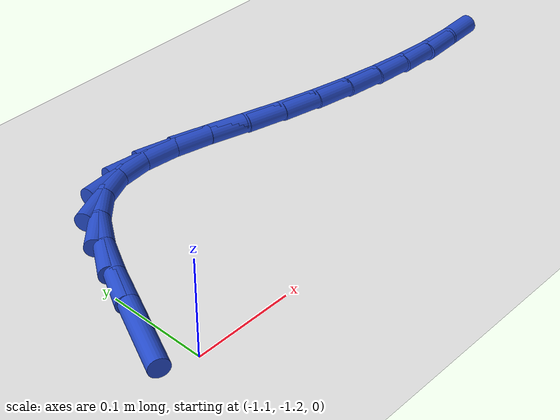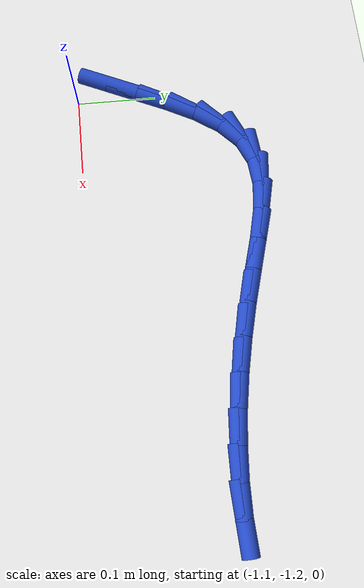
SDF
<sdf version="1.6">
 <world name="default">
  <model name="ground_plane">
   <static>1</static>
   <link name="link">
    <collision name="collision">
     <geometry><plane><normal>0 0 1</normal><size>100 100</size></plane></geometry>
     <surface><friction><ode><mu>100</mu><mu2>50</mu2></ode></friction></surface>
    </collision>
    <visual name="visual">
     <cast_shadows>0</cast_shadows>
     <geometry><plane><normal>0 0 1</normal><size>100 100</size></plane></geometry>
     <material>
      <script><uri>file://media/materials/scripts/gazebo.material</uri><name>Gazebo/WhiteGlow</name></script>
     </material>
    </visual>
   </link>
  </model>
  <model name="line">
   <link name="link_167">
    <pose>-1.1197684071147735 -1.1575147426174333 0.01 0 1.57 1.1388769129799887</pose>
    <collision name="collision">
     <geometry><cylinder><radius>0.01</radius><length>0.08</length></cylinder></geometry>
    </collision>
    <visual name="visual">
     <material>
      <script><name>Gazebo/Blue</name><uri>file://media/materials/scripts/gazebo.material</uri></script>
     </material>
     <geometry><cylinder><radius>0.01</radius><length>0.08</length></cylinder></geometry>
    </visual>
   </link>
   <link name="link_168">
    <pose>-1.103433842752954 -1.122077712791463 0.01 0 1.57 1.1398282263230974</pose>
    <collision name="collision">
     <geometry><cylinder><radius>0.01</radius><length>0.08</length></cylinder></geometry>
    </collision>
    <visual name="visual">
     <material>
      <script><name>Gazebo/Blue</name><uri>file://media/materials/scripts/gazebo.material</uri></script>
     </material>
     <geometry><cylinder><radius>0.01</radius><length>0.08</length></cylinder></geometry>
    </visual>
   </link>
   <link name="link_169">
    <pose>-1.0863407128746343 -1.0849020274361565 0.01 0 1.57 1.0875650120818283</pose>
    <collision name="collision">
     <geometry><cylinder><radius>0.01</radius><length>0.08</length></cylinder></geometry>
    </collision>
    <visual name="visual">
     <material>
      <script><name>Gazebo/Blue</name><uri>file://media/materials/scripts/gazebo.material</uri></script>
     </material>
     <geometry><cylinder><radius>0.01</radius><length>0.08</length></cylinder></geometry>
    </visual>
   </link>
   <link name="link_170">
    <pose>-1.0676012321452988 -1.0491890645363053 0.01 0 1.57 0.9700957743062841</pose>
    <collision name="collision">
     <geometry><cylinder><radius>0.01</radius><length>0.08</length></cylinder></geometry>
    </collision>
    <visual name="visual">
     <material>
      <script><name>Gazebo/Blue</name><uri>file://media/materials/scripts/gazebo.material</uri></script>
     </material>
     <geometry><cylinder><radius>0.01</radius><length>0.08</length></cylinder></geometry>
    </visual>
   </link>
   <link name="link_171">
    <pose>-1.0463276152304313 -1.0181402020766963 0.01 0 1.57 0.7538257753283981</pose>
    <collision name="collision">
     <geometry><cylinder><radius>0.01</radius><length>0.08</length></cylinder></geometry>
    </collision>
    <visual name="visual">
     <material>
      <script><name>Gazebo/Blue</name><uri>file://media/materials/scripts/gazebo.material</uri></script>
     </material>
     <geometry><cylinder><radius>0.01</radius><length>0.08</length></cylinder></geometry>
    </visual>
   </link>
   <link name="link_172">
    <pose>-1.0216320767955158 -0.9949568180421184 0.01 0 1.57 0.4139565607058293</pose>
    <collision name="collision">
     <geometry><cylinder><radius>0.01</radius><length>0.08</length></cylinder></geometry>
    </collision>
    <visual name="visual">
     <material>
      <script><name>Gazebo/Blue</name><uri>file://media/materials/scripts/gazebo.material</uri></script>
     </material>
     <geometry><cylinder><radius>0.01</radius><length>0.08</length></cylinder></geometry>
    </visual>
   </link>
   <link name="link_173">
    <pose>-0.9927930942430159 -0.9822866041548866 0.01 0 1.57 0.09477115636248466</pose>
    <collision name="collision">
     <geometry><cylinder><radius>0.01</radius><length>0.08</length></cylinder></geometry>
    </collision>
    <visual name="visual">
     <material>
      <script><name>Gazebo/Blue</name><uri>file://media/materials/scripts/gazebo.material</uri></script>
     </material>
     <geometry><cylinder><radius>0.01</radius><length>0.08</length></cylinder></geometry>
    </visual>
   </link>
   <link name="link_174">
    <pose>-0.9601677271383521 -0.9791853701712974 0.01 0 1.57 -0.11432200070218644</pose>
    <collision name="collision">
     <geometry><cylinder><radius>0.01</radius><length>0.08</length></cylinder></geometry>
    </collision>
    <visual name="visual">
     <material>
      <script><name>Gazebo/Blue</name><uri>file://media/materials/scripts/gazebo.material</uri></script>
     </material>
     <geometry><cylinder><radius>0.01</radius><length>0.08</length></cylinder></geometry>
    </visual>
   </link>
   <link name="link_175">
    <pose>-0.92454336241075 -0.9832758545892611 0.01 0 1.57 -0.23106291893609499</pose>
    <collision name="collision">
     <geometry><cylinder><radius>0.01</radius><length>0.08</length></cylinder></geometry>
    </collision>
    <visual name="visual">
     <material>
      <script><name>Gazebo/Blue</name><uri>file://media/materials/scripts/gazebo.material</uri></script>
     </material>
     <geometry><cylinder><radius>0.01</radius><length>0.08</length></cylinder></geometry>
    </visual>
   </link>
   <link name="link_176">
    <pose>-0.8867085071674751 -0.992177065502612 0.01 0 1.57 -0.2809989796131931</pose>
    <collision name="collision">
     <geometry><cylinder><radius>0.01</radius><length>0.08</length></cylinder></geometry>
    </collision>
    <visual name="visual">
     <material>
      <script><name>Gazebo/Blue</name><uri>file://media/materials/scripts/gazebo.material</uri></script>
     </material>
     <geometry><cylinder><radius>0.01</radius><length>0.08</length></cylinder></geometry>
    </visual>
   </link>
   <link name="link_177">
    <pose>-0.8474516685157927 -1.003508011005184 0.01 0 1.57 -0.2785905222663019</pose>
    <collision name="collision">
     <geometry><cylinder><radius>0.01</radius><length>0.08</length></cylinder></geometry>
    </collision>
    <visual name="visual">
     <material>
      <script><name>Gazebo/Blue</name><uri>file://media/materials/scripts/gazebo.material</uri></script>
     </material>
     <geometry><cylinder><radius>0.01</radius><length>0.08</length></cylinder></geometry>
    </visual>
   </link>
   <link name="link_178">
    <pose>-0.8075529746475081 -1.0149201912846846 0.01 0 1.57 -0.24774089463385035</pose>
    <collision name="collision">
     <geometry><cylinder><radius>0.01</radius><length>0.08</length></cylinder></geometry>
    </collision>
    <visual name="visual">
     <material>
      <script><name>Gazebo/Blue</name><uri>file://media/materials/scripts/gazebo.material</uri></script>
     </material>
     <geometry><cylinder><radius>0.01</radius><length>0.08</length></cylinder></geometry>
    </visual>
   </link>
   <link name="link_179">
    <pose>-0.7675409711367289 -1.0250407036775522 0.01 0 1.57 -0.21184127749093887</pose>
    <collision name="collision">
     <geometry><cylinder><radius>0.01</radius><length>0.08</length></cylinder></geometry>
    </collision>
    <visual name="visual">
     <material>
      <script><name>Gazebo/Blue</name><uri>file://media/materials/scripts/gazebo.material</uri></script>
     </material>
     <geometry><cylinder><radius>0.01</radius><length>0.08</length></cylinder></geometry>
    </visual>
   </link>
   <link name="link_180">
    <pose>-0.7276547886336905 -1.03361895030069 0.01 0 1.57 -0.17148757667284723</pose>
    <collision name="collision">
     <geometry><cylinder><radius>0.01</radius><length>0.08</length></cylinder></geometry>
    </collision>
    <visual name="visual">
     <material>
      <script><name>Gazebo/Blue</name><uri>file://media/materials/scripts/gazebo.material</uri></script>
     </material>
     <geometry><cylinder><radius>0.01</radius><length>0.08</length></cylinder></geometry>
    </visual>
   </link>
   <link name="link_181">
    <pose>-0.688117565832059 -1.0404663475205342 0.01 0 1.57 -0.12580325048778535</pose>
    <collision name="collision">
     <geometry><cylinder><radius>0.01</radius><length>0.08</length></cylinder></geometry>
    </collision>
    <visual name="visual">
     <material>
      <script><name>Gazebo/Blue</name><uri>file://media/materials/scripts/gazebo.material</uri></script>
     </material>
     <geometry><cylinder><radius>0.01</radius><length>0.08</length></cylinder></geometry>
    </visual>
   </link>
   <link name="link_182">
    <pose>-0.6491524414254999 -1.045394311703522 0.01 0 1.57 -0.07374487959948658</pose>
    <collision name="collision">
     <geometry><cylinder><radius>0.01</radius><length>0.08</length></cylinder></geometry>
    </collision>
    <visual name="visual">
     <material>
      <script><name>Gazebo/Blue</name><uri>file://media/materials/scripts/gazebo.material</uri></script>
     </material>
     <geometry><cylinder><radius>0.01</radius><length>0.08</length></cylinder></geometry>
    </visual>
   </link>
   <link name="link_183">
    <pose>-0.6109825541076808 -1.0482142592160884 0.01 0 1.57 -0.014085903199939558</pose>
    <collision name="collision">
     <geometry><cylinder><radius>0.01</radius><length>0.08</length></cylinder></geometry>
    </collision>
    <visual name="visual">
     <material>
      <script><name>Gazebo/Blue</name><uri>file://media/materials/scripts/gazebo.material</uri></script>
     </material>
     <geometry><cylinder><radius>0.01</radius><length>0.08</length></cylinder></geometry>
    </visual>
   </link>
   <link name="link_184">
    <pose>-0.5738310425722675 -1.048737606424671 0.01 0 1.57 0.05457779369479178</pose>
    <collision name="collision">
     <geometry><cylinder><radius>0.01</radius><length>0.08</length></cylinder></geometry>
    </collision>
    <visual name="visual">
     <material>
      <script><name>Gazebo/Blue</name><uri>file://media/materials/scripts/gazebo.material</uri></script>
     </material>
     <geometry><cylinder><radius>0.01</radius><length>0.08</length></cylinder></geometry>
    </visual>
   </link>
  </model>
 </world>
</sdf>
